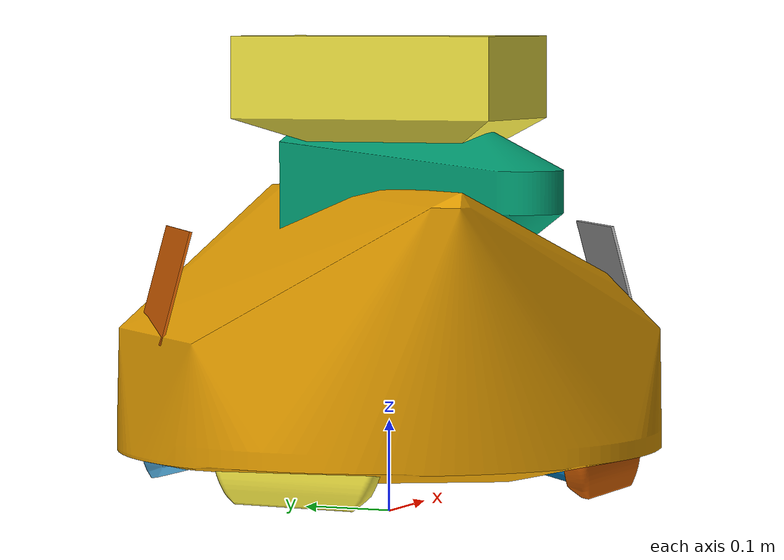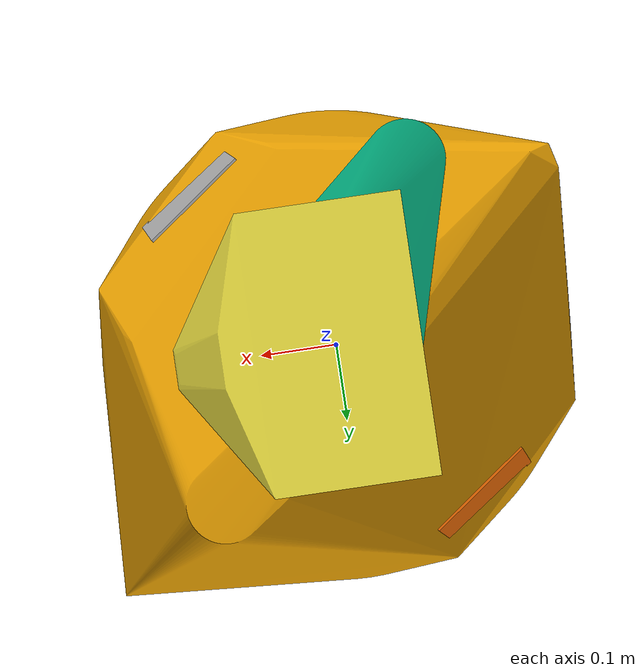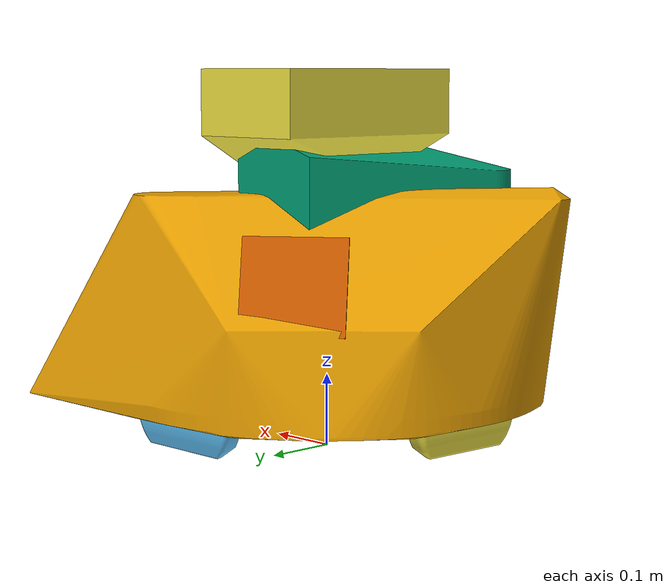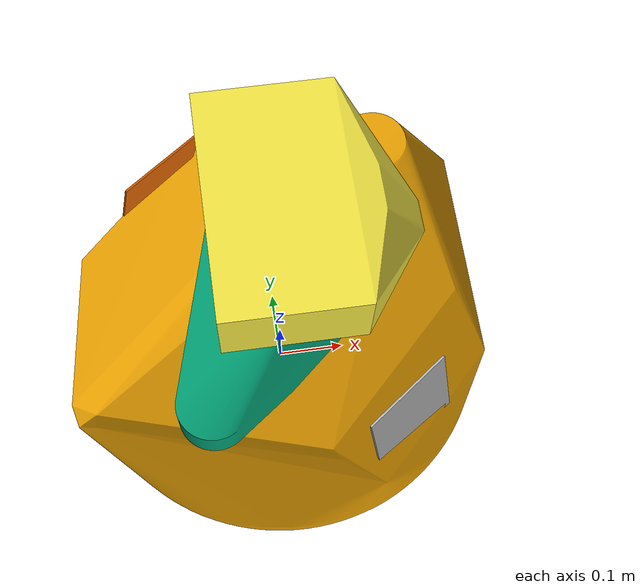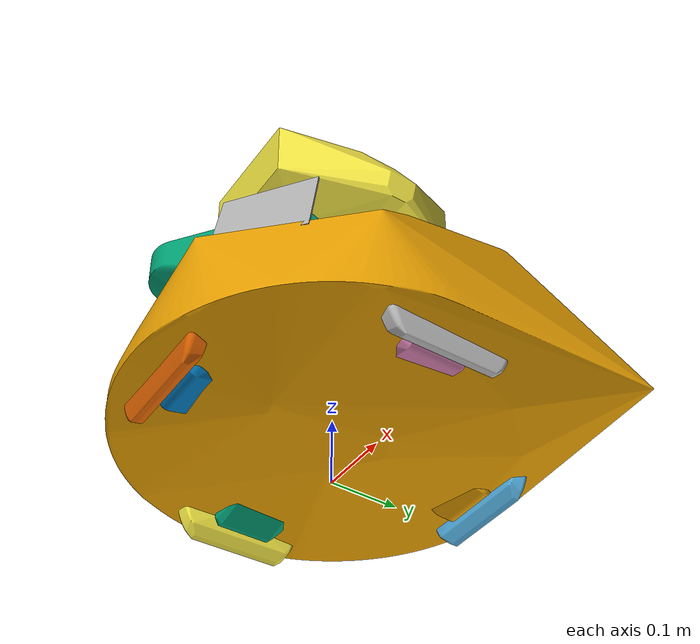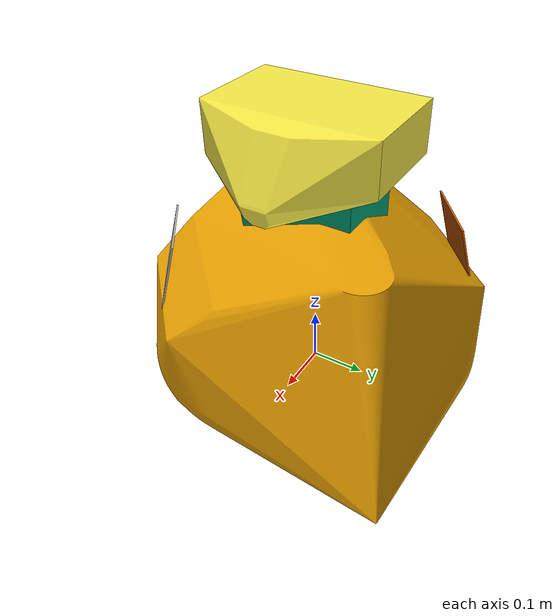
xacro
<?xml version="1.0"?>
<robot name="sentry" xmlns:xacro="http://www.ros.org/wiki/xacro">
  <xacro:arg name="camera" default="false"/>
  <xacro:arg name="mcb_physics" default="false"/>
  <xacro:arg name="mcb_drive" default="stop"/>
  <xacro:arg name="firmware_binary" default=""/>
  <xacro:arg name="mcb_backend" default="hosted"/>
  <xacro:arg name="mcb_game_stage" default="4"/>
  <xacro:arg name="mcb_device_link" default="/tmp/mcb_emulator_pty"/>
  <xacro:arg name="uart_relay_fixture" default="false"/>
  <xacro:arg name="uart_deterministic" default="false"/>
  <xacro:arg name="uart_epoch_zero" default="false"/>
  <xacro:arg name="uart_epoch_zero_ack" default="/detector_standin/ready"/>
  <xacro:arg name="uart_pose_consumed" default="none"/>
  <!-- false: gz adds no lidar noise; lidar_scan adds the same noise keyed by (seed, stamp, beam). -->
  <xacro:arg name="lidar_noise" default="true"/>
  <xacro:arg name="uart_baud" default="115200"/>
  <xacro:arg name="mcb_read_delay_ms" default="0"/>
  <xacro:arg name="mcb_auto_fire" default="true"/>
  <!-- The gz model name, so each copy's plugin topics are its own. -->
  <xacro:arg name="name" default="sentry"/>
  <!-- An opponent carries no sensors and has no gravity or contacts;
       its OpponentMover system moves it. -->
  <xacro:arg name="opponent" default="false"/>
  <xacro:property name="name" value="$(arg name)"/>
  <xacro:include filename="$(find sim)/urdf/sentry_v2/sentry_v2.urdf"/>

  <xacro:macro name="body_visual" params="link rgb">
    <gazebo reference="${link}">
      <visual>
        <material>
          <ambient>${rgb} 1</ambient>
          <diffuse>${rgb} 1</diffuse>
          <specular>0.3 0.3 0.3 1</specular>
        </material>
        <visibility_flags>0xFFFFFFFE</visibility_flags>
      </visual>
    </gazebo>
  </xacro:macro>
  <xacro:body_visual link="root" rgb="0.18 0.18 0.2"/>
  <xacro:body_visual link="head" rgb="0.75 0.08 0.08"/>
  <xacro:body_visual link="head_pitch" rgb="0.9 0.35 0.1"/>
  <xacro:body_visual link="armor_0" rgb="0.85 0.85 0.85"/>
  <xacro:body_visual link="armor_1" rgb="0.85 0.85 0.85"/>
  <xacro:body_visual link="armor_2" rgb="0.85 0.85 0.85"/>
  <xacro:body_visual link="armor_3" rgb="0.85 0.85 0.85"/>

  <xacro:macro name="corner" params="i">
    <xacro:body_visual link="carrier_${i}" rgb="0.6 0.62 0.65"/>
    <xacro:body_visual link="wheel_${i}" rgb="0.08 0.08 0.08"/>
    <gazebo reference="suspension_${i}">
      <springReference>0.0</springReference>
      <springStiffness>2200.0</springStiffness>
    </gazebo>
    <gazebo reference="wheel_${i}">
      <mu1>0.0</mu1>
      <mu2>0.0</mu2>
    </gazebo>
  </xacro:macro>
  <xacro:corner i="0"/>
  <xacro:corner i="1"/>
  <xacro:corner i="2"/>
  <xacro:corner i="3"/>

  <!-- Aiming origin on the pitch axis, between the flywheels; CAD lateral offset.
       thornbots_pkg's URDF carries the same frame. -->
  <link name="muzzle"/>
  <joint name="muzzlelink" type="fixed">
    <parent link="head_pitch"/>
    <child link="muzzle"/>
    <origin xyz="0 0.00190269 0" rpy="0 0 0"/>
  </joint>

  <!-- Same angle-compensated A2M8 grid as sentry.urdf.xacro;
       see README.md#lidar-format-and-model-limits. -->
  <xacro:unless value="$(arg opponent)">
  <gazebo reference="lidar">
    <sensor name="lidar" type="gpu_lidar">
      <always_on>true</always_on>
      <visualize>true</visualize>
      <update_rate>11.2</update_rate>
      <topic>scan</topic>
      <gz_frame_id>lidar</gz_frame_id>
      <lidar>
        <scan>
          <horizontal>
            <samples>720</samples>
            <resolution>1.000000</resolution>
            <min_angle>-3.141592653589793</min_angle>
            <max_angle>3.141592653589793</max_angle>
          </horizontal>
        </scan>
        <range>
          <min>0.05</min>
          <max>12.0</max>
          <resolution>0.015000</resolution>
        </range>
        <xacro:if value="$(arg lidar_noise)">
        <noise>
          <type>gaussian</type>
          <mean>0.0</mean>
          <stddev>0.01</stddev>
        </noise>
        </xacro:if>
        <visibility_mask>0x01</visibility_mask>
      </lidar>
    </sensor>
  </gazebo>
  </xacro:unless>

  <xacro:if value="$(arg camera)">
    <gazebo reference="camera">
      <sensor name="camera" type="depth_camera">
        <always_on>true</always_on>
        <visualize>false</visualize>
        <update_rate>60</update_rate>
        <topic>camera/depth_image</topic>
        <gz_frame_id>camera</gz_frame_id>
        <camera>
          <camera_info_topic>camera/camera_info</camera_info_topic>
          <horizontal_fov>1.5184</horizontal_fov>
          <image>
            <width>640</width>
            <height>480</height>
            <format>R_FLOAT32</format>
          </image>
          <clip>
            <near>0.1</near>
            <far>10.0</far>
          </clip>
        </camera>
      </sensor>
    </gazebo>
  </xacro:if>

  <gazebo>
    <plugin filename="gz-sim-odometry-publisher-system" name="gz::sim::systems::OdometryPublisher">
      <odom_frame>map</odom_frame>
      <robot_base_frame>root</robot_base_frame>
      <publish_odom_tf>true</publish_odom_tf>
      <tf_topic>/model/${name}/odom_tf</tf_topic>
      <dimensions>3</dimensions>
      <odom_publish_frequency>100</odom_publish_frequency>
    </plugin>
    <plugin filename="gz-sim-pose-publisher-system" name="gz::sim::systems::PosePublisher">
      <publish_model_pose>true</publish_model_pose>
      <publish_link_pose>true</publish_link_pose>
      <publish_nested_model_pose>false</publish_nested_model_pose>
      <publish_visual_pose>false</publish_visual_pose>
      <publish_collision_pose>false</publish_collision_pose>
      <publish_sensor_pose>false</publish_sensor_pose>
      <use_pose_vector_msg>true</use_pose_vector_msg>
      <update_frequency>250</update_frequency>
    </plugin>
    <!-- Every joint, so robot_state_publisher can place the wheels too. -->
    <plugin filename="gz-sim-joint-state-publisher-system" name="gz::sim::systems::JointStatePublisher"/>
    <xacro:unless value="$(arg mcb_physics)">
    <plugin filename="gz-sim-joint-position-controller-system" name="gz::sim::systems::JointPositionController">
      <joint_name>headlink</joint_name>
      <topic>/model/${name}/joint/headlink/cmd_pos</topic>
      <p_gain>75</p_gain>
      <i_gain>0.0</i_gain>
      <d_gain>2.1</d_gain>
      <i_max>0</i_max>
      <i_min>0</i_min>
      <cmd_max>50</cmd_max>
      <cmd_min>-50</cmd_min>
    </plugin>
    <plugin filename="gz-sim-joint-position-controller-system" name="gz::sim::systems::JointPositionController">
      <joint_name>headpitch</joint_name>
      <topic>/model/${name}/joint/headpitch/cmd_pos</topic>
      <p_gain>75</p_gain>
      <i_gain>0.0</i_gain>
      <d_gain>1.2</d_gain>
      <i_max>0</i_max>
      <i_min>0</i_min>
      <cmd_max>50</cmd_max>
      <cmd_min>-50</cmd_min>
    </plugin>
    <plugin filename="gz-sim-velocity-control-system" name="gz::sim::systems::VelocityControl">
      <topic>/model/${name}/cmd_vel</topic>
    </plugin>
    </xacro:unless>
    <xacro:if value="$(arg mcb_physics)">
      <plugin filename="mcb_firmware_system" name="sim::McbFirmwareSystem">
        <drive>$(arg mcb_drive)</drive>
        <firmware_binary>$(arg firmware_binary)</firmware_binary>
        <backend>$(arg mcb_backend)</backend>
        <game_stage>$(arg mcb_game_stage)</game_stage>
        <device_link>$(arg mcb_device_link)</device_link>
        <uart_relay_fixture>$(arg uart_relay_fixture)</uart_relay_fixture>
        <uart_deterministic>$(arg uart_deterministic)</uart_deterministic>
        <uart_epoch_zero>$(arg uart_epoch_zero)</uart_epoch_zero>
        <uart_epoch_zero_ack>$(arg uart_epoch_zero_ack)</uart_epoch_zero_ack>
        <uart_pose_consumed>$(arg uart_pose_consumed)</uart_pose_consumed>
        <uart_baud>$(arg uart_baud)</uart_baud>
        <mcb_read_delay_ms>$(arg mcb_read_delay_ms)</mcb_read_delay_ms>
        <auto_fire>$(arg mcb_auto_fire)</auto_fire>
      </plugin>
    </xacro:if>
  </gazebo>

  <xacro:if value="$(arg opponent)">
    <xacro:macro name="ghost" params="link">
      <gazebo reference="${link}">
        <gravity>false</gravity>
        <collision>
          <surface><contact><collide_bitmask>0x00</collide_bitmask></contact></surface>
        </collision>
      </gazebo>
    </xacro:macro>
    <gazebo>
      <plugin filename="opponent_mover" name="sim::OpponentMover">
        <z>-0.0115</z>
      </plugin>
    </gazebo>
    <xacro:ghost link="root"/>
    <xacro:ghost link="head"/>
    <xacro:ghost link="head_pitch"/>
    <xacro:ghost link="carrier_0"/>
    <xacro:ghost link="carrier_1"/>
    <xacro:ghost link="carrier_2"/>
    <xacro:ghost link="carrier_3"/>
    <xacro:ghost link="wheel_0"/>
    <xacro:ghost link="wheel_1"/>
    <xacro:ghost link="wheel_2"/>
    <xacro:ghost link="wheel_3"/>
  </xacro:if>
</robot>

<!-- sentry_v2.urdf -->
<!-- 2026-10-26 low-resolution CAD geometry; retained simulation dynamics.
     See README.md#urdfsentry_v2-the-teams-low-resolution-cad for provenance. -->
<robot name="sentry_v2">
  <link name="root">
    <inertial><origin xyz="0.00355658 0.0017297 0.140094"/><mass value="4.36619"/><inertia ixx="0.0869601" ixy="0.00439031" ixz="0.00123469" iyy="0.0880764" iyz="0.000290053" izz="0.139084"/></inertial>
    <visual><geometry><mesh filename="package://sim/urdf/sentry_v2/meshes/root.stl"/></geometry></visual>
    <collision><geometry><mesh filename="package://sim/urdf/sentry_v2/meshes/collision/root.stl"/></geometry></collision>
  </link>
  <link name="body"/>
  <joint name="fastened_2" type="fixed"><parent link="root"/><child link="body"/><origin xyz="0 0 0"/></joint>
  <link name="head">
    <inertial><origin xyz="-0.0234968 -0.0318138 0.047578"/><mass value="1.30869"/><inertia ixx="0.0139946" ixy="-0.00384816" ixz="0.00145733" iyy="0.00794943" iyz="0.00206302" izz="0.0147945"/></inertial>
    <visual><geometry><mesh filename="package://sim/urdf/sentry_v2/meshes/head.stl"/></geometry></visual>
    <collision><geometry><mesh filename="package://sim/urdf/sentry_v2/meshes/collision/head.stl"/></geometry></collision>
  </link>
  <joint name="headlink" type="continuous"><parent link="body"/><child link="head"/><origin xyz="0 0 0.267503694" rpy="0 0 0"/><axis xyz="0 0 1"/></joint>
  <link name="head_pitch">
    <inertial><origin xyz="0.010768 0.0962738 0.0354966"/><mass value="1.50713"/><inertia ixx="0.0122617" ixy="-0.000502495" ixz="-0.00026901" iyy="0.00704508" iyz="-0.000299065" izz="0.0138715"/></inertial>
    <visual><geometry><mesh filename="package://sim/urdf/sentry_v2/meshes/head_pitch.stl"/></geometry></visual>
    <collision><geometry><mesh filename="package://sim/urdf/sentry_v2/meshes/collision/head_pitch.stl"/></geometry></collision>
  </link>
  <joint name="headpitch" type="revolute"><parent link="head"/><child link="head_pitch"/><origin xyz="0 0 0.136" rpy="0 0 0"/><axis xyz="0 1 0"/><limit lower="-0.6" upper="0.6" effort="200" velocity="10"/></joint>
  <link name="carrier_0">
    <inertial><origin xyz="0.00230416 0.0422971 -0.00518912"/><mass value="0.202003"/><inertia ixx="0.000255949" ixy="-2.49331e-05" ixz="-8.04149e-06" iyy="0.000364038" iyz="-4.56818e-05" izz="0.000411985"/></inertial>
    <visual><geometry><mesh filename="package://sim/urdf/sentry_v2/meshes/carrier_0.stl"/></geometry></visual>
  </link>
  <joint name="suspension_0" type="prismatic"><parent link="body"/><child link="carrier_0"/><origin xyz="6.61834e-09 -0.247 0.0954"/><axis xyz="0 0 1"/><limit lower="-0.02" upper="0.02" effort="1000" velocity="5"/><dynamics damping="60.0"/></joint>
  <link name="wheel_0">
    <inertial><origin xyz="-0.00017114 0.000967629 -0.000472395"/><mass value="0.23336"/><inertia ixx="0.000582497" ixy="-2.48037e-09" ixz="-2.12789e-10" iyy="0.0011439" iyz="-1.0027e-10" izz="0.00058339"/></inertial>
    <visual><geometry><mesh filename="package://sim/urdf/sentry_v2/meshes/wheel_0.stl"/></geometry></visual>
    <collision><geometry><sphere radius="0.0949"/></geometry></collision>
  </link>
  <joint name="wheel_0_spin" type="continuous"><parent link="carrier_0"/><child link="wheel_0"/><origin xyz="0 0 0"/><axis xyz="2.67949e-08 -1 0"/></joint>
  <link name="carrier_1">
    <inertial><origin xyz="-0.0423732 -0.00240972 -0.00518942"/><mass value="0.202003"/><inertia ixx="0.000364005" ixy="-2.51904e-05" ixz="4.56829e-05" iyy="0.000255951" iyz="8.44769e-06" izz="0.000411955"/></inertial>
    <visual><geometry><mesh filename="package://sim/urdf/sentry_v2/meshes/carrier_1.stl"/></geometry></visual>
  </link>
  <joint name="suspension_1" type="prismatic"><parent link="body"/><child link="carrier_1"/><origin xyz="0.247 6.61834e-09 0.0954"/><axis xyz="0 0 1"/><limit lower="-0.02" upper="0.02" effort="1000" velocity="5"/><dynamics damping="60.0"/></joint>
  <link name="wheel_1">
    <inertial><origin xyz="-0.00104353 9.41835e-05 -0.000473085"/><mass value="0.23336"/><inertia ixx="0.0011439" ixy="-6.87074e-11" ixz="-1.0507e-09" iyy="0.000582497" iyz="5.53747e-12" izz="0.00058339"/></inertial>
    <visual><geometry><mesh filename="package://sim/urdf/sentry_v2/meshes/wheel_1.stl"/></geometry></visual>
    <collision><geometry><sphere radius="0.0949"/></geometry></collision>
  </link>
  <joint name="wheel_1_spin" type="continuous"><parent link="carrier_1"/><child link="wheel_1"/><origin xyz="0 0 0"/><axis xyz="1 2.67949e-08 0"/></joint>
  <link name="carrier_2">
    <inertial><origin xyz="-0.00137027 -0.0414329 -0.00541422"/><mass value="0.199167"/><inertia ixx="0.000248734" ixy="-1.2694e-05" ixz="3.97166e-06" iyy="0.000340183" iyz="4.35324e-05" izz="0.000382362"/></inertial>
    <visual><geometry><mesh filename="package://sim/urdf/sentry_v2/meshes/carrier_2.stl"/></geometry></visual>
  </link>
  <joint name="suspension_2" type="prismatic"><parent link="body"/><child link="carrier_2"/><origin xyz="-6.61834e-09 0.247 0.0954"/><axis xyz="0 0 1"/><limit lower="-0.02" upper="0.02" effort="1000" velocity="5"/><dynamics damping="60.0"/></joint>
  <link name="wheel_2">
    <inertial><origin xyz="-0.000171244 -0.000779457 -0.000472177"/><mass value="0.23336"/><inertia ixx="0.000582497" ixy="5.95863e-10" ixz="3.43991e-11" iyy="0.0011439" iyz="6.36512e-10" izz="0.00058339"/></inertial>
    <visual><geometry><mesh filename="package://sim/urdf/sentry_v2/meshes/wheel_2.stl"/></geometry></visual>
    <collision><geometry><sphere radius="0.0949"/></geometry></collision>
  </link>
  <joint name="wheel_2_spin" type="continuous"><parent link="carrier_2"/><child link="wheel_2"/><origin xyz="0 0 0"/><axis xyz="-2.67949e-08 1 0"/></joint>
  <link name="carrier_3">
    <inertial><origin xyz="0.0413573 0.00132495 -0.00541309"/><mass value="0.199167"/><inertia ixx="0.000340171" ixy="-1.29563e-05" ixz="-4.35321e-05" iyy="0.00024873" iyz="-4.37986e-06" izz="0.000382349"/></inertial>
    <visual><geometry><mesh filename="package://sim/urdf/sentry_v2/meshes/carrier_3.stl"/></geometry></visual>
  </link>
  <joint name="suspension_3" type="prismatic"><parent link="body"/><child link="carrier_3"/><origin xyz="-0.247 -6.61834e-09 0.0954"/><axis xyz="0 0 1"/><limit lower="-0.02" upper="0.02" effort="1000" velocity="5"/><dynamics damping="60.0"/></joint>
  <link name="wheel_3">
    <inertial><origin xyz="0.000703275 9.45356e-05 -0.000472468"/><mass value="0.23336"/><inertia ixx="0.0011439" ixy="-1.36054e-09" ixz="-9.73242e-10" iyy="0.000582497" iyz="2.53416e-10" izz="0.00058339"/></inertial>
    <visual><geometry><mesh filename="package://sim/urdf/sentry_v2/meshes/wheel_3.stl"/></geometry></visual>
    <collision><geometry><sphere radius="0.0949"/></geometry></collision>
  </link>
  <joint name="wheel_3_spin" type="continuous"><parent link="carrier_3"/><child link="wheel_3"/><origin xyz="0 0 0"/><axis xyz="-1 -2.67949e-08 0"/></joint>
  <link name="armor_0"><visual><geometry><box size="0.00301404 0.135002 0.125002"/></geometry></visual><collision><geometry><box size="0.00301404 0.135002 0.125002"/></geometry></collision></link>
  <joint name="armor_0link" type="fixed"><parent link="root"/><child link="armor_0"/><origin xyz="0.204139959 0.150682952 0.148603392" rpy="0 -0.261799339 0.635864487"/></joint>
  <link name="armor_1"><visual><geometry><box size="0.00301404 0.135002 0.125002"/></geometry></visual><collision><geometry><box size="0.00301404 0.135002 0.125002"/></geometry></collision></link>
  <joint name="armor_1link" type="fixed"><parent link="root"/><child link="armor_1"/><origin xyz="-0.148299431 0.200910863 0.25248797" rpy="0 -0.261797504 2.206660314"/></joint>
  <link name="armor_2"><visual><geometry><box size="0.00301404 0.135002 0.125002"/></geometry></visual><collision><geometry><box size="0.00301404 0.135002 0.125002"/></geometry></collision></link>
  <joint name="armor_2link" type="fixed"><parent link="root"/><child link="armor_2"/><origin xyz="-0.204139942 -0.150683009 0.148603318" rpy="0 -0.261796504 -2.505724829"/></joint>
  <link name="armor_3"><visual><geometry><box size="0.00301404 0.135002 0.125002"/></geometry></visual><collision><geometry><box size="0.00301404 0.135002 0.125002"/></geometry></collision></link>
  <joint name="armor_3link" type="fixed"><parent link="root"/><child link="armor_3"/><origin xyz="0.148299403 -0.200910883 0.252487973" rpy="0 -0.261799535 -0.934934345"/></joint>
  <link name="lidar"/>
  <joint name="lidarlink" type="fixed"><parent link="head"/><child link="lidar"/><origin xyz="-0.105 -0.193326 0.101293" rpy="0 0 0.5907"/></joint>
  <link name="camera"/>
  <joint name="cameralink" type="fixed"><parent link="head_pitch"/><child link="camera"/><origin xyz="0.095699877 0.0325 0.055000043" rpy="0 0 0"/></joint>
</robot>
